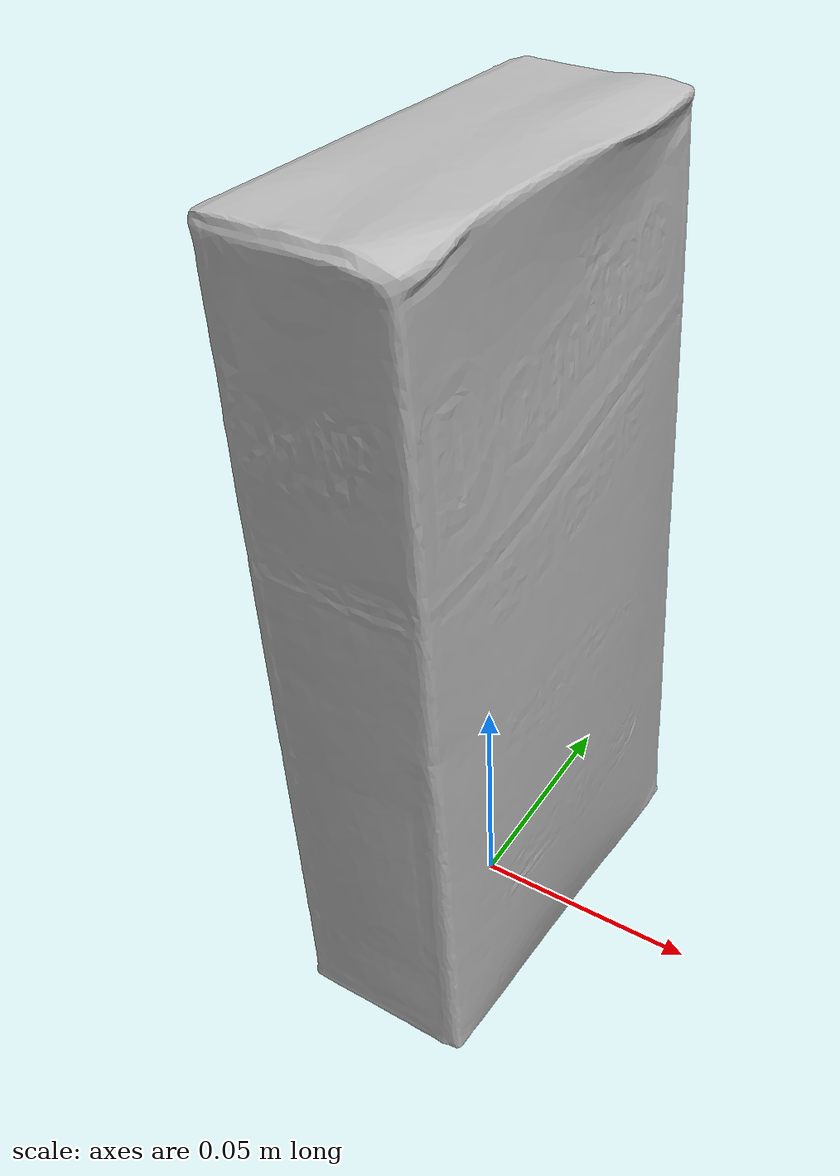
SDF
<?xml version="1.0"?>
<sdf version="1.6">
  <model name="sugar_box">
    <link name="link">
      <inertial>
        <mass>0.514</mass>
        <inertia>
          <ixx>0.001651054</ixx>
          <ixy>0.0</ixy>
          <ixz>0.0</ixz>
          <iyy>0.001373622</iyy>
          <iyz>0.0</iyz>
          <izz>0.000401134</izz>
        </inertia>
        <pose>0 0 0.0875 0 0 0</pose>
      </inertial>
      <collision name="collision">
        <pose>0 0 0.0875 0 0 0</pose>
        <geometry>
          <box>
            <size>0.038 0.089 0.175</size>
          </box>
        </geometry>
      </collision>
      <visual name="visual">
        <!-- 视觉网格和 collision 的三条轴已对应；去掉额外倾斜并对齐中心。 -->
        <pose>-0.000231415 -0.000366120 -0.000946116 0 0 0</pose>
        <geometry>
          <mesh>
            <uri>model://sugar_box/meshes/textured.dae</uri>
          </mesh>
        </geometry>
      </visual>
    </link>
  </model>
</sdf>
